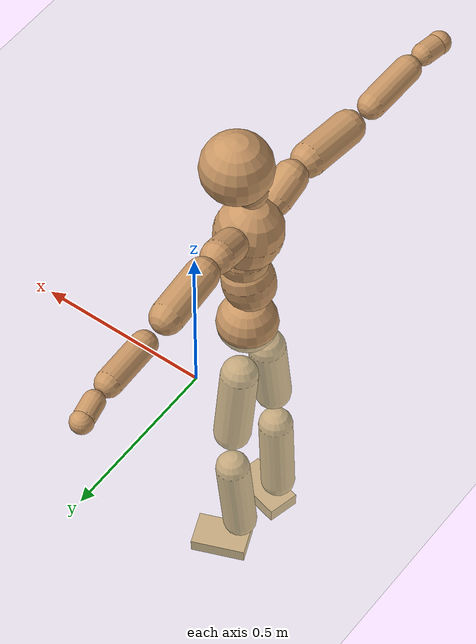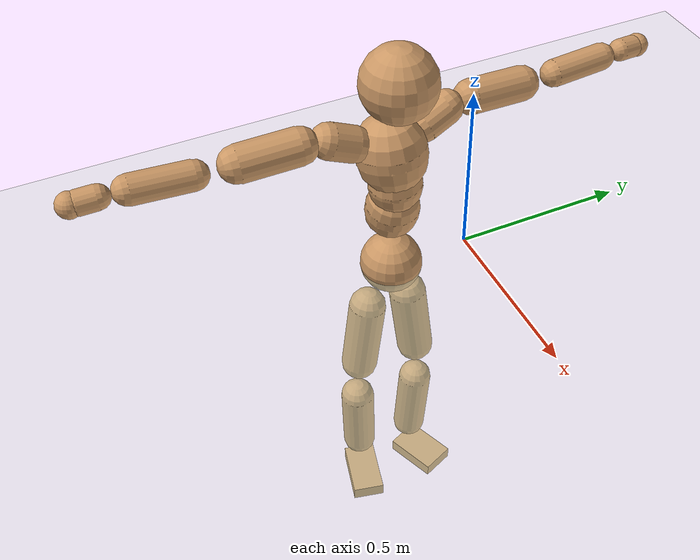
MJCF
<mujoco model="humanoid">
  <compiler coordinate="local" angle="radian"/>
  <default>
    <joint damping="0.0" armature="0.01" stiffness="0.0" limited="true"/>
    <geom conaffinity="1" condim="3" contype="7" margin="0.001" rgba="0.8 0.6 .4 1"/>
  </default>
  <asset>
    <texture type="skybox" builtin="gradient" rgb1=".4 .5 .6" rgb2="0 0 0" width="100" height="100"/>
    <texture builtin="flat" height="1278" mark="cross" markrgb="1 1 1" name="texgeom" random="0.01" rgb1="0.8 0.6 0.4" rgb2="0.8 0.6 0.4" type="cube" width="127"/>
    <texture builtin="checker" height="100" name="texplane" rgb1="0 0 0" rgb2="0.8 0.8 0.8" type="2d" width="100"/>
    <material name="MatPlane" reflectance="0.5" shininess="1" specular="1" texrepeat="60 60" texture="texplane"/>
    <material name="geom" texture="texgeom" texuniform="true"/>
  </asset>
  <worldbody>
    <light cutoff="100" diffuse="1 1 1" dir="-0 0 -1.3" directional="true" exponent="1" pos="0 0 1.3" specular=".1 .1 .1"/>
    <geom conaffinity="1" condim="3" name="floor" pos="0 0 0" rgba="0.8 0.9 0.8 1" size="100 100 .2" type="plane" material="MatPlane"/>
    <body name="Pelvis" pos="0.002 -0.233 0.0117">
      <freejoint name="Pelvis"/>
      <geom type="sphere" contype="1" conaffinity="1" density="500" size="0.0877" pos="0.0000 0.0000 0.0000" name="Pelvis"/>
      <body name="L_Hip" pos="-0.0211 0.0535 -0.0804">
        <joint name="L_Hip_x" type="hinge" pos="0 0 0" axis="1 0 0" stiffness="800" damping="80" armature="0.02" range="-180.0000 180.0000"/>
        <joint name="L_Hip_y" type="hinge" pos="0 0 0" axis="0 1 0" stiffness="800" damping="80" armature="0.02" range="-180.0000 180.0000"/>
        <joint name="L_Hip_z" type="hinge" pos="0 0 0" axis="0 0 1" stiffness="800" damping="80" armature="0.02" range="-180.0000 180.0000"/>
        <geom type="capsule" contype="1" conaffinity="1" density="500" fromto="0.0014 0.0093 -0.0790 0.0055 0.0370 -0.3159" size="0.0541" name="L_Hip"/>
        <body name="L_Knee" pos="0.0068 0.0463 -0.3948">
          <joint name="L_Knee_x" type="hinge" pos="0 0 0" axis="1 0 0" stiffness="800" damping="80" armature="0.02" range="-180.0000 180.0000"/>
          <joint name="L_Knee_y" type="hinge" pos="0 0 0" axis="0 1 0" stiffness="800" damping="80" armature="0.02" range="-180.0000 180.0000"/>
          <joint name="L_Knee_z" type="hinge" pos="0 0 0" axis="0 0 1" stiffness="800" damping="80" armature="0.02" range="-180.0000 180.0000"/>
          <geom type="capsule" contype="1" conaffinity="1" density="500" fromto="-0.0069 -0.0025 -0.0835 -0.0277 -0.0099 -0.3341" size="0.0498" name="L_Knee"/>
          <body name="L_Ankle" pos="-0.0347 -0.0123 -0.4176">
            <joint name="L_Ankle_x" type="hinge" pos="0 0 0" axis="1 0 0" stiffness="800" damping="80" armature="0.02" range="-180.0000 180.0000"/>
            <joint name="L_Ankle_y" type="hinge" pos="0 0 0" axis="0 1 0" stiffness="800" damping="80" armature="0.02" range="-180.0000 180.0000"/>
            <joint name="L_Ankle_z" type="hinge" pos="0 0 0" axis="0 0 1" stiffness="800" damping="80" armature="0.02" range="-180.0000 180.0000"/>
            <geom type="box" contype="1" conaffinity="1" density="500" pos="0.0582 0.0237 -0.0297" size="0.0802 0.0521 0.0203" quat="0.9814 0.0000 0.0000 0.1920" name="L_Ankle"/>
            <body name="L_Toe" pos="0.1164 0.0474 -0.0593">
              <joint name="L_Toe_x" type="hinge" pos="0 0 0" axis="1 0 0" stiffness="500" damping="50" armature="0.02" range="-180.0000 180.0000"/>
              <joint name="L_Toe_y" type="hinge" pos="0 0 0" axis="0 1 0" stiffness="500" damping="50" armature="0.02" range="-180.0000 180.0000"/>
              <joint name="L_Toe_z" type="hinge" pos="0 0 0" axis="0 0 1" stiffness="500" damping="50" armature="0.02" range="-180.0000 180.0000"/>
              <geom type="box" contype="1" conaffinity="1" density="500" pos="0.0000 0.0000 0.0317" size="0.001 0.0024 0.0011" quat="0.9806 0.0000 0.0000 0.1962" name="L_Toe"/>
            </body>
          </body>
        </body>
      </body>
      <body name="R_Hip" pos="-0.0186 -0.0557 -0.0888">
        <joint name="R_Hip_x" type="hinge" pos="0 0 0" axis="1 0 0" stiffness="800" damping="80" armature="0.02" range="-180.0000 180.0000"/>
        <joint name="R_Hip_y" type="hinge" pos="0 0 0" axis="0 1 0" stiffness="800" damping="80" armature="0.02" range="-180.0000 180.0000"/>
        <joint name="R_Hip_z" type="hinge" pos="0 0 0" axis="0 0 1" stiffness="800" damping="80" armature="0.02" range="-180.0000 180.0000"/>
        <geom type="capsule" contype="1" conaffinity="1" density="500" fromto="-0.0008 -0.0097 -0.0778 -0.0030 -0.0387 -0.3114" size="0.0538" name="R_Hip"/>
        <body name="R_Knee" pos="-0.0038 -0.0483 -0.3892">
          <joint name="R_Knee_x" type="hinge" pos="0 0 0" axis="1 0 0" stiffness="800" damping="80" armature="0.02" range="-180.0000 180.0000"/>
          <joint name="R_Knee_y" type="hinge" pos="0 0 0" axis="0 1 0" stiffness="800" damping="80" armature="0.02" range="-180.0000 180.0000"/>
          <joint name="R_Knee_z" type="hinge" pos="0 0 0" axis="0 0 1" stiffness="800" damping="80" armature="0.02" range="-180.0000 180.0000"/>
          <geom type="capsule" contype="1" conaffinity="1" density="500" fromto="-0.0062 0.0035 -0.0824 -0.0248 0.0142 -0.3297" size="0.0507" name="R_Knee"/>
          <body name="R_Ankle" pos="-0.031 0.0177 -0.4122">
            <joint name="R_Ankle_x" type="hinge" pos="0 0 0" axis="1 0 0" stiffness="800" damping="80" armature="0.02" range="-180.0000 180.0000"/>
            <joint name="R_Ankle_y" type="hinge" pos="0 0 0" axis="0 1 0" stiffness="800" damping="80" armature="0.02" range="-180.0000 180.0000"/>
            <joint name="R_Ankle_z" type="hinge" pos="0 0 0" axis="0 0 1" stiffness="800" damping="80" armature="0.02" range="-180.0000 180.0000"/>
            <geom type="box" contype="1" conaffinity="1" density="500" pos="0.0623 -0.0148 -0.0323" size="0.0873 0.0482 0.0218" quat="0.9932 0.0000 0.0000 -0.1162" name="R_Ankle"/>
            <body name="R_Toe" pos="0.1246 -0.0296 -0.0647">
              <joint name="R_Toe_x" type="hinge" pos="0 0 0" axis="1 0 0" stiffness="500" damping="50" armature="0.02" range="-180.0000 180.0000"/>
              <joint name="R_Toe_y" type="hinge" pos="0 0 0" axis="0 1 0" stiffness="500" damping="50" armature="0.02" range="-180.0000 180.0000"/>
              <joint name="R_Toe_z" type="hinge" pos="0 0 0" axis="0 0 1" stiffness="500" damping="50" armature="0.02" range="-180.0000 180.0000"/>
              <geom type="box" contype="1" conaffinity="1" density="500" pos="0.0000 0.0000 0.0342" size="0.001 0.0023 0.0012" quat="0.9943 0.0000 0.0000 -0.1070" name="R_Toe"/>
            </body>
          </body>
        </body>
      </body>
      <body name="Torso" pos="-0.0247 0.0043 0.1202">
        <joint name="Torso_x" type="hinge" pos="0 0 0" axis="1 0 0" stiffness="1000" damping="100" armature="0.02" range="-180.0000 180.0000"/>
        <joint name="Torso_y" type="hinge" pos="0 0 0" axis="0 1 0" stiffness="1000" damping="100" armature="0.02" range="-180.0000 180.0000"/>
        <joint name="Torso_z" type="hinge" pos="0 0 0" axis="0 0 1" stiffness="1000" damping="100" armature="0.02" range="-180.0000 180.0000"/>
        <geom type="capsule" contype="1" conaffinity="1" density="500" fromto="0.0195 0.0025 0.0815 0.0130 0.0017 0.0543" size="0.0744" name="Torso"/>
        <body name="Spine" pos="0.0325 0.0041 0.1358">
          <joint name="Spine_x" type="hinge" pos="0 0 0" axis="1 0 0" stiffness="1000" damping="100" armature="0.02" range="-180.0000 180.0000"/>
          <joint name="Spine_y" type="hinge" pos="0 0 0" axis="0 1 0" stiffness="1000" damping="100" armature="0.02" range="-180.0000 180.0000"/>
          <joint name="Spine_z" type="hinge" pos="0 0 0" axis="0 0 1" stiffness="1000" damping="100" armature="0.02" range="-180.0000 180.0000"/>
          <geom type="capsule" contype="1" conaffinity="1" density="500" fromto="0.0005 -0.0019 0.0324 0.0003 -0.0013 0.0216" size="0.0735" name="Spine"/>
          <body name="Chest" pos="0.0008 -0.0032 0.054">
            <joint name="Chest_x" type="hinge" pos="0 0 0" axis="1 0 0" stiffness="1000" damping="100" armature="0.02" range="-180.0000 180.0000"/>
            <joint name="Chest_y" type="hinge" pos="0 0 0" axis="0 1 0" stiffness="1000" damping="100" armature="0.02" range="-180.0000 180.0000"/>
            <joint name="Chest_z" type="hinge" pos="0 0 0" axis="0 0 1" stiffness="1000" damping="100" armature="0.02" range="-180.0000 180.0000"/>
            <geom type="capsule" contype="1" conaffinity="1" density="500" fromto="-0.0145 -0.0056 0.0846 -0.0097 -0.0037 0.0564" size="0.0954" name="Chest"/>
            <body name="Neck" pos="-0.0279 -0.0131 0.2049">
              <joint name="Neck_x" type="hinge" pos="0 0 0" axis="1 0 0" stiffness="500" damping="50" armature="0.02" range="-180.0000 180.0000"/>
              <joint name="Neck_y" type="hinge" pos="0 0 0" axis="0 1 0" stiffness="500" damping="50" armature="0.02" range="-180.0000 180.0000"/>
              <joint name="Neck_z" type="hinge" pos="0 0 0" axis="0 0 1" stiffness="500" damping="50" armature="0.02" range="-180.0000 180.0000"/>
              <geom type="capsule" contype="1" conaffinity="1" density="500" fromto="0.0109 0.0018 0.0192 0.0435 0.0071 0.0769" size="0.0434" name="Neck"/>
              <body name="Head" pos="0.0544 0.0088 0.0961">
                <joint name="Head_x" type="hinge" pos="0 0 0" axis="1 0 0" stiffness="500" damping="50" armature="0.02" range="-180.0000 180.0000"/>
                <joint name="Head_y" type="hinge" pos="0 0 0" axis="0 1 0" stiffness="500" damping="50" armature="0.02" range="-180.0000 180.0000"/>
                <joint name="Head_z" type="hinge" pos="0 0 0" axis="0 0 1" stiffness="500" damping="50" armature="0.02" range="-180.0000 180.0000"/>
                <geom type="sphere" contype="1" conaffinity="1" density="500" size="0.1011" pos="0.0000 0.0000 0.0000" name="Head"/>
              </body>
            </body>
            <body name="L_Thorax" pos="-0.0218 0.0683 0.1087">
              <joint name="L_Thorax_x" type="hinge" pos="0 0 0" axis="1 0 0" stiffness="500" damping="50" armature="0.02" range="-180.0000 180.0000"/>
              <joint name="L_Thorax_y" type="hinge" pos="0 0 0" axis="0 1 0" stiffness="500" damping="50" armature="0.02" range="-180.0000 180.0000"/>
              <joint name="L_Thorax_z" type="hinge" pos="0 0 0" axis="0 0 1" stiffness="500" damping="50" armature="0.02" range="-180.0000 180.0000"/>
              <geom type="capsule" contype="1" conaffinity="1" density="500" fromto="-0.0031 0.0228 0.0091 -0.0125 0.0912 0.0366" size="0.0476" name="L_Thorax"/>
              <body name="L_Shoulder" pos="-0.0156 0.114 0.0457">
                <joint name="L_Shoulder_x" type="hinge" pos="0 0 0" axis="1 0 0" stiffness="500" damping="50" armature="0.02" range="-720.0000 720.0000"/>
                <joint name="L_Shoulder_y" type="hinge" pos="0 0 0" axis="0 1 0" stiffness="500" damping="50" armature="0.02" range="-720.0000 720.0000"/>
                <joint name="L_Shoulder_z" type="hinge" pos="0 0 0" axis="0 0 1" stiffness="500" damping="50" armature="0.02" range="-720.0000 720.0000"/>
                <geom type="capsule" contype="1" conaffinity="1" density="500" fromto="-0.0027 0.0526 -0.0032 -0.0109 0.2103 -0.0127" size="0.0476" name="L_Shoulder"/>
                <body name="L_Elbow" pos="-0.0137 0.2629 -0.0159">
                  <joint name="L_Elbow_x" type="hinge" pos="0 0 0" axis="1 0 0" stiffness="500" damping="50" armature="0.02" range="-720.0000 720.0000"/>
                  <joint name="L_Elbow_y" type="hinge" pos="0 0 0" axis="0 1 0" stiffness="500" damping="50" armature="0.02" range="-720.0000 720.0000"/>
                  <joint name="L_Elbow_z" type="hinge" pos="0 0 0" axis="0 0 1" stiffness="500" damping="50" armature="0.02" range="-720.0000 720.0000"/>
                  <geom type="capsule" contype="1" conaffinity="1" density="500" fromto="-0.0025 0.0508 0.0018 -0.0099 0.2032 0.0073" size="0.0375" name="L_Elbow"/>
                  <body name="L_Wrist" pos="-0.0123 0.254 0.0091">
                    <joint name="L_Wrist_x" type="hinge" pos="0 0 0" axis="1 0 0" stiffness="300" damping="30" armature="0.02" range="-180.0000 180.0000"/>
                    <joint name="L_Wrist_y" type="hinge" pos="0 0 0" axis="0 1 0" stiffness="300" damping="30" armature="0.02" range="-180.0000 180.0000"/>
                    <joint name="L_Wrist_z" type="hinge" pos="0 0 0" axis="0 0 1" stiffness="300" damping="30" armature="0.02" range="-180.0000 180.0000"/>
                    <geom type="capsule" contype="1" conaffinity="1" density="500" fromto="-0.0028 0.0157 -0.0019 -0.0114 0.0628 -0.0074" size="0.0309" name="L_Wrist"/>
                    <body name="L_Hand" pos="-0.0142 0.0785 -0.0093">
                      <joint name="L_Hand_x" type="hinge" pos="0 0 0" axis="1 0 0" stiffness="300" damping="30" armature="0.02" range="-180.0000 180.0000"/>
                      <joint name="L_Hand_y" type="hinge" pos="0 0 0" axis="0 1 0" stiffness="300" damping="30" armature="0.02" range="-180.0000 180.0000"/>
                      <joint name="L_Hand_z" type="hinge" pos="0 0 0" axis="0 0 1" stiffness="300" damping="30" armature="0.02" range="-180.0000 180.0000"/>
                      <geom type="sphere" contype="1" conaffinity="1" density="500" size="0.0323" pos="0.0000 0.0000 0.0000" name="L_Hand"/>
                    </body>
                  </body>
                </body>
              </body>
            </body>
            <body name="R_Thorax" pos="-0.0228 -0.083 0.1096">
              <joint name="R_Thorax_x" type="hinge" pos="0 0 0" axis="1 0 0" stiffness="500" damping="50" armature="0.02" range="-180.0000 180.0000"/>
              <joint name="R_Thorax_y" type="hinge" pos="0 0 0" axis="0 1 0" stiffness="500" damping="50" armature="0.02" range="-180.0000 180.0000"/>
              <joint name="R_Thorax_z" type="hinge" pos="0 0 0" axis="0 0 1" stiffness="500" damping="50" armature="0.02" range="-180.0000 180.0000"/>
              <geom type="capsule" contype="1" conaffinity="1" density="500" fromto="-0.0010 -0.0216 0.0095 -0.0041 -0.0866 0.0379" size="0.0488" name="R_Thorax"/>
              <body name="R_Shoulder" pos="-0.0052 -0.1082 0.0474">
                <joint name="R_Shoulder_x" type="hinge" pos="0 0 0" axis="1 0 0" stiffness="500" damping="50" armature="0.02" range="-720.0000 720.0000"/>
                <joint name="R_Shoulder_y" type="hinge" pos="0 0 0" axis="0 1 0" stiffness="500" damping="50" armature="0.02" range="-720.0000 720.0000"/>
                <joint name="R_Shoulder_z" type="hinge" pos="0 0 0" axis="0 0 1" stiffness="500" damping="50" armature="0.02" range="-720.0000 720.0000"/>
                <geom type="capsule" contype="1" conaffinity="1" density="500" fromto="-0.0038 -0.0531 -0.0035 -0.0153 -0.2124 -0.0140" size="0.0501" name="R_Shoulder"/>
                <body name="R_Elbow" pos="-0.0191 -0.2656 -0.0175">
                  <joint name="R_Elbow_x" type="hinge" pos="0 0 0" axis="1 0 0" stiffness="500" damping="50" armature="0.02" range="-720.0000 720.0000"/>
                  <joint name="R_Elbow_y" type="hinge" pos="0 0 0" axis="0 1 0" stiffness="500" damping="50" armature="0.02" range="-720.0000 720.0000"/>
                  <joint name="R_Elbow_z" type="hinge" pos="0 0 0" axis="0 0 1" stiffness="500" damping="50" armature="0.02" range="-720.0000 720.0000"/>
                  <geom type="capsule" contype="1" conaffinity="1" density="500" fromto="-0.0018 -0.0534 0.0023 -0.0071 -0.2136 0.0093" size="0.0395" name="R_Elbow"/>
                  <body name="R_Wrist" pos="-0.0089 -0.267 0.0116">
                    <joint name="R_Wrist_x" type="hinge" pos="0 0 0" axis="1 0 0" stiffness="300" damping="30" armature="0.02" range="-180.0000 180.0000"/>
                    <joint name="R_Wrist_y" type="hinge" pos="0 0 0" axis="0 1 0" stiffness="300" damping="30" armature="0.02" range="-180.0000 180.0000"/>
                    <joint name="R_Wrist_z" type="hinge" pos="0 0 0" axis="0 0 1" stiffness="300" damping="30" armature="0.02" range="-180.0000 180.0000"/>
                    <geom type="capsule" contype="1" conaffinity="1" density="500" fromto="-0.0019 -0.0166 -0.0015 -0.0076 -0.0666 -0.0062" size="0.0326" name="R_Wrist"/>
                    <body name="R_Hand" pos="-0.0095 -0.0832 -0.0077">
                      <joint name="R_Hand_x" type="hinge" pos="0 0 0" axis="1 0 0" stiffness="300" damping="30" armature="0.02" range="-180.0000 180.0000"/>
                      <joint name="R_Hand_y" type="hinge" pos="0 0 0" axis="0 1 0" stiffness="300" damping="30" armature="0.02" range="-180.0000 180.0000"/>
                      <joint name="R_Hand_z" type="hinge" pos="0 0 0" axis="0 0 1" stiffness="300" damping="30" armature="0.02" range="-180.0000 180.0000"/>
                      <geom type="sphere" contype="1" conaffinity="1" density="500" size="0.0339" pos="0.0000 0.0000 0.0000" name="R_Hand"/>
                    </body>
                  </body>
                </body>
              </body>
            </body>
          </body>
        </body>
      </body>
    </body>
  </worldbody>
  <actuator>
    <motor name="L_Hip_x" joint="L_Hip_x" gear="500"/>
    <motor name="L_Hip_y" joint="L_Hip_y" gear="500"/>
    <motor name="L_Hip_z" joint="L_Hip_z" gear="500"/>
    <motor name="L_Knee_x" joint="L_Knee_x" gear="500"/>
    <motor name="L_Knee_y" joint="L_Knee_y" gear="500"/>
    <motor name="L_Knee_z" joint="L_Knee_z" gear="500"/>
    <motor name="L_Ankle_x" joint="L_Ankle_x" gear="500"/>
    <motor name="L_Ankle_y" joint="L_Ankle_y" gear="500"/>
    <motor name="L_Ankle_z" joint="L_Ankle_z" gear="500"/>
    <motor name="L_Toe_x" joint="L_Toe_x" gear="500"/>
    <motor name="L_Toe_y" joint="L_Toe_y" gear="500"/>
    <motor name="L_Toe_z" joint="L_Toe_z" gear="500"/>
    <motor name="R_Hip_x" joint="R_Hip_x" gear="500"/>
    <motor name="R_Hip_y" joint="R_Hip_y" gear="500"/>
    <motor name="R_Hip_z" joint="R_Hip_z" gear="500"/>
    <motor name="R_Knee_x" joint="R_Knee_x" gear="500"/>
    <motor name="R_Knee_y" joint="R_Knee_y" gear="500"/>
    <motor name="R_Knee_z" joint="R_Knee_z" gear="500"/>
    <motor name="R_Ankle_x" joint="R_Ankle_x" gear="500"/>
    <motor name="R_Ankle_y" joint="R_Ankle_y" gear="500"/>
    <motor name="R_Ankle_z" joint="R_Ankle_z" gear="500"/>
    <motor name="R_Toe_x" joint="R_Toe_x" gear="500"/>
    <motor name="R_Toe_y" joint="R_Toe_y" gear="500"/>
    <motor name="R_Toe_z" joint="R_Toe_z" gear="500"/>
    <motor name="Torso_x" joint="Torso_x" gear="500"/>
    <motor name="Torso_y" joint="Torso_y" gear="500"/>
    <motor name="Torso_z" joint="Torso_z" gear="500"/>
    <motor name="Spine_x" joint="Spine_x" gear="500"/>
    <motor name="Spine_y" joint="Spine_y" gear="500"/>
    <motor name="Spine_z" joint="Spine_z" gear="500"/>
    <motor name="Chest_x" joint="Chest_x" gear="500"/>
    <motor name="Chest_y" joint="Chest_y" gear="500"/>
    <motor name="Chest_z" joint="Chest_z" gear="500"/>
    <motor name="Neck_x" joint="Neck_x" gear="500"/>
    <motor name="Neck_y" joint="Neck_y" gear="500"/>
    <motor name="Neck_z" joint="Neck_z" gear="500"/>
    <motor name="Head_x" joint="Head_x" gear="500"/>
    <motor name="Head_y" joint="Head_y" gear="500"/>
    <motor name="Head_z" joint="Head_z" gear="500"/>
    <motor name="L_Thorax_x" joint="L_Thorax_x" gear="500"/>
    <motor name="L_Thorax_y" joint="L_Thorax_y" gear="500"/>
    <motor name="L_Thorax_z" joint="L_Thorax_z" gear="500"/>
    <motor name="L_Shoulder_x" joint="L_Shoulder_x" gear="500"/>
    <motor name="L_Shoulder_y" joint="L_Shoulder_y" gear="500"/>
    <motor name="L_Shoulder_z" joint="L_Shoulder_z" gear="500"/>
    <motor name="L_Elbow_x" joint="L_Elbow_x" gear="500"/>
    <motor name="L_Elbow_y" joint="L_Elbow_y" gear="500"/>
    <motor name="L_Elbow_z" joint="L_Elbow_z" gear="500"/>
    <motor name="L_Wrist_x" joint="L_Wrist_x" gear="500"/>
    <motor name="L_Wrist_y" joint="L_Wrist_y" gear="500"/>
    <motor name="L_Wrist_z" joint="L_Wrist_z" gear="500"/>
    <motor name="L_Hand_x" joint="L_Hand_x" gear="500"/>
    <motor name="L_Hand_y" joint="L_Hand_y" gear="500"/>
    <motor name="L_Hand_z" joint="L_Hand_z" gear="500"/>
    <motor name="R_Thorax_x" joint="R_Thorax_x" gear="500"/>
    <motor name="R_Thorax_y" joint="R_Thorax_y" gear="500"/>
    <motor name="R_Thorax_z" joint="R_Thorax_z" gear="500"/>
    <motor name="R_Shoulder_x" joint="R_Shoulder_x" gear="500"/>
    <motor name="R_Shoulder_y" joint="R_Shoulder_y" gear="500"/>
    <motor name="R_Shoulder_z" joint="R_Shoulder_z" gear="500"/>
    <motor name="R_Elbow_x" joint="R_Elbow_x" gear="500"/>
    <motor name="R_Elbow_y" joint="R_Elbow_y" gear="500"/>
    <motor name="R_Elbow_z" joint="R_Elbow_z" gear="500"/>
    <motor name="R_Wrist_x" joint="R_Wrist_x" gear="500"/>
    <motor name="R_Wrist_y" joint="R_Wrist_y" gear="500"/>
    <motor name="R_Wrist_z" joint="R_Wrist_z" gear="500"/>
    <motor name="R_Hand_x" joint="R_Hand_x" gear="500"/>
    <motor name="R_Hand_y" joint="R_Hand_y" gear="500"/>
    <motor name="R_Hand_z" joint="R_Hand_z" gear="500"/>
  </actuator>
  <contact>
    <exclude body1="Torso" body2="Chest"/>
    <exclude body1="Head" body2="Chest"/>
    <exclude body1="R_Knee" body2="R_Toe"/>
    <exclude body1="R_Knee" body2="L_Ankle"/>
    <exclude body1="R_Knee" body2="L_Toe"/>
    <exclude body1="L_Knee" body2="L_Toe"/>
    <exclude body1="L_Knee" body2="R_Ankle"/>
    <exclude body1="L_Knee" body2="R_Toe"/>
    <exclude body1="L_Shoulder" body2="Chest"/>
    <exclude body1="R_Shoulder" body2="Chest"/>
  </contact>
  <sensor/>
  <size njmax="700" nconmax="700"/>
</mujoco>
